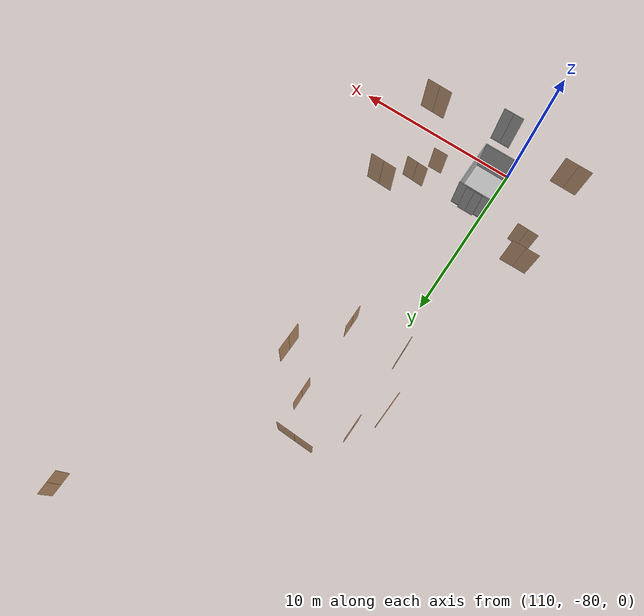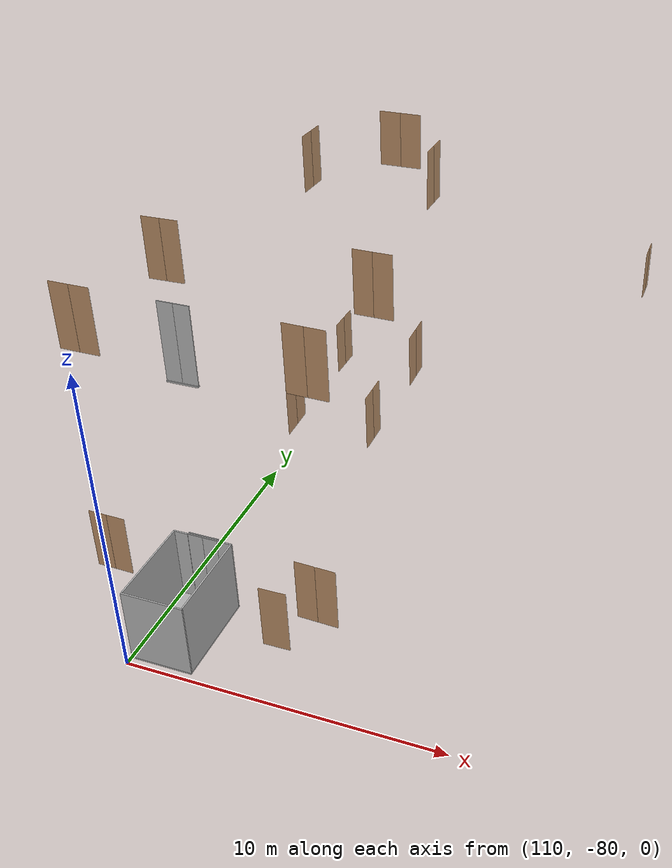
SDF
<sdf version="1.7">
 <world name="sim_world">
  <model name="TD2011CP1">
   <pose>120.17686281691562 -51.225544932021194 0.0 0 0 -1.5641731375628034</pose>
   <link name="right">
    <pose>0.3380386731190806 0 1.11 0 0 0</pose>
    <visual name="right_visual">
     <geometry><box><size>0.6660773462381612 0.03 2.2</size></box></geometry>
     <material>
      <ambient>0.5 0.25 0 0.6</ambient>
      <diffuse>0.5 0.25 0 0.6</diffuse>
      <pbr><metal><metalness>0.0</metalness></metal></pbr>
     </material>
    </visual>
    <collision name="right_collision">
     <geometry><box><size>0.6660773462381612 0.03 2.2</size></box></geometry>
     <surface><contact><collide_bitmask>0x02</collide_bitmask></contact></surface>
    </collision>
    <inertial>
     <mass>50.0</mass>
     <inertia><ixx>20.17041666666667</ixx><iyy>22.0152459632153</iyy><izz>1.8523292965486302</izz></inertia>
    </inertial>
   </link>
   <joint name="right_joint" type="revolute">
    <parent>world</parent>
    <child>right</child>
    <axis><xyz>0 0 -1</xyz><limit><lower>0</lower><upper>1.57</upper></limit></axis>
    <pose>0.3380386731190806 0 0 0 0 0</pose>
   </joint>
   <link name="left">
    <pose>-0.3380386731190806 0 1.11 0 0 0</pose>
    <visual name="left_visual">
     <geometry><box><size>0.6660773462381612 0.03 2.2</size></box></geometry>
     <material>
      <ambient>0.5 0.25 0 0.6</ambient>
      <diffuse>0.5 0.25 0 0.6</diffuse>
      <pbr><metal><metalness>0.0</metalness></metal></pbr>
     </material>
    </visual>
    <collision name="left_collision">
     <geometry><box><size>0.6660773462381612 0.03 2.2</size></box></geometry>
     <surface><contact><collide_bitmask>0x02</collide_bitmask></contact></surface>
    </collision>
    <inertial>
     <mass>50.0</mass>
     <inertia><ixx>20.17041666666667</ixx><iyy>22.0152459632153</iyy><izz>1.8523292965486302</izz></inertia>
    </inertial>
   </link>
   <joint name="left_joint" type="revolute">
    <parent>world</parent>
    <child>left</child>
    <axis><xyz>0 0 -1</xyz><limit><lower>-1.57</lower><upper>0</upper></limit></axis>
    <pose>-0.3380386731190806 0 0 0 0 0</pose>
   </joint>
   <plugin name="register_component" filename="libregister_component.so">
    <component name="Door">
     <v_max_door>0.5</v_max_door>
     <a_max_door>0.3</a_max_door>
     <a_nom_door>0.15</a_nom_door>
     <dx_min_door>0.01</dx_min_door>
     <f_max_door>500.0</f_max_door>
     <ros_interface>true</ros_interface>
     <door name="TD2011CP1" type="DoubleSwingDoor" left_joint_name="left_joint" right_joint_name="right_joint"/>
    </component>
   </plugin>
  </model>
  <model name="TD2003AA">
   <pose>109.39467455781474 -62.08049952299339 0.0 0 0 -1.5804696773764422</pose>
   <link name="right">
    <pose>0.3555885767495707 0 1.11 0 0 0</pose>
    <visual name="right_visual">
     <geometry><box><size>0.7011771534991413 0.03 2.2</size></box></geometry>
     <material>
      <ambient>0.5 0.25 0 0.6</ambient>
      <diffuse>0.5 0.25 0 0.6</diffuse>
      <pbr><metal><metalness>0.0</metalness></metal></pbr>
     </material>
    </visual>
    <collision name="right_collision">
     <geometry><box><size>0.7011771534991413 0.03 2.2</size></box></geometry>
     <surface><contact><collide_bitmask>0x02</collide_bitmask></contact></surface>
    </collision>
    <inertial>
     <mass>50.0</mass>
     <inertia><ixx>20.17041666666667</ixx><iyy>22.215205835788165</iyy><izz>2.0522891691214937</izz></inertia>
    </inertial>
   </link>
   <joint name="right_joint" type="revolute">
    <parent>world</parent>
    <child>right</child>
    <axis><xyz>0 0 -1</xyz><limit><lower>0</lower><upper>1.57</upper></limit></axis>
    <pose>0.3555885767495707 0 0 0 0 0</pose>
   </joint>
   <link name="left">
    <pose>-0.3555885767495707 0 1.11 0 0 0</pose>
    <visual name="left_visual">
     <geometry><box><size>0.7011771534991413 0.03 2.2</size></box></geometry>
     <material>
      <ambient>0.5 0.25 0 0.6</ambient>
      <diffuse>0.5 0.25 0 0.6</diffuse>
      <pbr><metal><metalness>0.0</metalness></metal></pbr>
     </material>
    </visual>
    <collision name="left_collision">
     <geometry><box><size>0.7011771534991413 0.03 2.2</size></box></geometry>
     <surface><contact><collide_bitmask>0x02</collide_bitmask></contact></surface>
    </collision>
    <inertial>
     <mass>50.0</mass>
     <inertia><ixx>20.17041666666667</ixx><iyy>22.215205835788165</iyy><izz>2.0522891691214937</izz></inertia>
    </inertial>
   </link>
   <joint name="left_joint" type="revolute">
    <parent>world</parent>
    <child>left</child>
    <axis><xyz>0 0 -1</xyz><limit><lower>-1.57</lower><upper>0</upper></limit></axis>
    <pose>-0.3555885767495707 0 0 0 0 0</pose>
   </joint>
   <plugin name="register_component" filename="libregister_component.so">
    <component name="Door">
     <v_max_door>0.5</v_max_door>
     <a_max_door>0.3</a_max_door>
     <a_nom_door>0.15</a_nom_door>
     <dx_min_door>0.01</dx_min_door>
     <f_max_door>500.0</f_max_door>
     <ros_interface>true</ros_interface>
     <door name="TD2003AA" type="DoubleSwingDoor" left_joint_name="left_joint" right_joint_name="right_joint"/>
    </component>
   </plugin>
  </model>
  <model name="TD2002AA">
   <pose>112.55227772977256 -62.0532626495431 0.0 0 0 1.5980504964411408</pose>
   <link name="right">
    <pose>0.384640636116833 0 1.11 0 0 0</pose>
    <visual name="right_visual">
     <geometry><box><size>0.759281272233666 0.03 2.2</size></box></geometry>
     <material>
      <ambient>0.5 0.25 0 0.6</ambient>
      <diffuse>0.5 0.25 0 0.6</diffuse>
      <pbr><metal><metalness>0.0</metalness></metal></pbr>
     </material>
    </visual>
    <collision name="right_collision">
     <geometry><box><size>0.759281272233666 0.03 2.2</size></box></geometry>
     <surface><contact><collide_bitmask>0x02</collide_bitmask></contact></surface>
    </collision>
    <inertial>
     <mass>50.0</mass>
     <inertia><ixx>20.17041666666667</ixx><iyy>22.568783543186562</iyy><izz>2.405866876519894</izz></inertia>
    </inertial>
   </link>
   <joint name="right_joint" type="revolute">
    <parent>world</parent>
    <child>right</child>
    <axis><xyz>0 0 -1</xyz><limit><lower>0</lower><upper>1.57</upper></limit></axis>
    <pose>0.384640636116833 0 0 0 0 0</pose>
   </joint>
   <link name="left">
    <pose>-0.384640636116833 0 1.11 0 0 0</pose>
    <visual name="left_visual">
     <geometry><box><size>0.759281272233666 0.03 2.2</size></box></geometry>
     <material>
      <ambient>0.5 0.25 0 0.6</ambient>
      <diffuse>0.5 0.25 0 0.6</diffuse>
      <pbr><metal><metalness>0.0</metalness></metal></pbr>
     </material>
    </visual>
    <collision name="left_collision">
     <geometry><box><size>0.759281272233666 0.03 2.2</size></box></geometry>
     <surface><contact><collide_bitmask>0x02</collide_bitmask></contact></surface>
    </collision>
    <inertial>
     <mass>50.0</mass>
     <inertia><ixx>20.17041666666667</ixx><iyy>22.568783543186562</iyy><izz>2.405866876519894</izz></inertia>
    </inertial>
   </link>
   <joint name="left_joint" type="revolute">
    <parent>world</parent>
    <child>left</child>
    <axis><xyz>0 0 -1</xyz><limit><lower>-1.57</lower><upper>0</upper></limit></axis>
    <pose>-0.384640636116833 0 0 0 0 0</pose>
   </joint>
   <plugin name="register_component" filename="libregister_component.so">
    <component name="Door">
     <v_max_door>0.5</v_max_door>
     <a_max_door>0.3</a_max_door>
     <a_nom_door>0.15</a_nom_door>
     <dx_min_door>0.01</dx_min_door>
     <f_max_door>500.0</f_max_door>
     <ros_interface>true</ros_interface>
     <door name="TD2002AA" type="DoubleSwingDoor" left_joint_name="left_joint" right_joint_name="right_joint"/>
    </component>
   </plugin>
  </model>
  <model name="TD2048AA">
   <pose>109.40632345548323 -66.90460207556437 0.0 0 0 -1.5465537573246375</pose>
   <link name="right">
    <pose>0.3821804307386069 0 1.11 0 0 0</pose>
    <visual name="right_visual">
     <geometry><box><size>0.7543608614772138 0.03 2.2</size></box></geometry>
     <material>
      <ambient>0.5 0.25 0 0.6</ambient>
      <diffuse>0.5 0.25 0 0.6</diffuse>
      <pbr><metal><metalness>0.0</metalness></metal></pbr>
     </material>
    </visual>
    <collision name="right_collision">
     <geometry><box><size>0.7543608614772138 0.03 2.2</size></box></geometry>
     <surface><contact><collide_bitmask>0x02</collide_bitmask></contact></surface>
    </collision>
    <inertial>
     <mass>50.0</mass>
     <inertia><ixx>20.17041666666667</ixx><iyy>22.537751288869355</iyy><izz>2.3748346222026844</izz></inertia>
    </inertial>
   </link>
   <joint name="right_joint" type="revolute">
    <parent>world</parent>
    <child>right</child>
    <axis><xyz>0 0 -1</xyz><limit><lower>0</lower><upper>1.57</upper></limit></axis>
    <pose>0.3821804307386069 0 0 0 0 0</pose>
   </joint>
   <link name="left">
    <pose>-0.3821804307386069 0 1.11 0 0 0</pose>
    <visual name="left_visual">
     <geometry><box><size>0.7543608614772138 0.03 2.2</size></box></geometry>
     <material>
      <ambient>0.5 0.25 0 0.6</ambient>
      <diffuse>0.5 0.25 0 0.6</diffuse>
      <pbr><metal><metalness>0.0</metalness></metal></pbr>
     </material>
    </visual>
    <collision name="left_collision">
     <geometry><box><size>0.7543608614772138 0.03 2.2</size></box></geometry>
     <surface><contact><collide_bitmask>0x02</collide_bitmask></contact></surface>
    </collision>
    <inertial>
     <mass>50.0</mass>
     <inertia><ixx>20.17041666666667</ixx><iyy>22.537751288869355</iyy><izz>2.3748346222026844</izz></inertia>
    </inertial>
   </link>
   <joint name="left_joint" type="revolute">
    <parent>world</parent>
    <child>left</child>
    <axis><xyz>0 0 -1</xyz><limit><lower>-1.57</lower><upper>0</upper></limit></axis>
    <pose>-0.3821804307386069 0 0 0 0 0</pose>
   </joint>
   <plugin name="register_component" filename="libregister_component.so">
    <component name="Door">
     <v_max_door>0.5</v_max_door>
     <a_max_door>0.3</a_max_door>
     <a_nom_door>0.15</a_nom_door>
     <dx_min_door>0.01</dx_min_door>
     <f_max_door>500.0</f_max_door>
     <ros_interface>true</ros_interface>
     <door name="TD2048AA" type="DoubleSwingDoor" left_joint_name="left_joint" right_joint_name="right_joint"/>
    </component>
   </plugin>
  </model>
  <model name="TD2047AA">
   <pose>112.57834746896705 -66.83982612436739 0.0 0 0 1.5783168461663433</pose>
   <link name="right">
    <pose>0.33948855459902605 0 1.11 0 0 0</pose>
    <visual name="right_visual">
     <geometry><box><size>0.6689771091980521 0.03 2.2</size></box></geometry>
     <material>
      <ambient>0.5 0.25 0 0.6</ambient>
      <diffuse>0.5 0.25 0 0.6</diffuse>
      <pbr><metal><metalness>0.0</metalness></metal></pbr>
     </material>
    </visual>
    <collision name="right_collision">
     <geometry><box><size>0.6689771091980521 0.03 2.2</size></box></geometry>
     <surface><contact><collide_bitmask>0x02</collide_bitmask></contact></surface>
    </collision>
    <inertial>
     <mass>50.0</mass>
     <inertia><ixx>20.17041666666667</ixx><iyy>22.031376552629098</iyy><izz>1.8684598859624273</izz></inertia>
    </inertial>
   </link>
   <joint name="right_joint" type="revolute">
    <parent>world</parent>
    <child>right</child>
    <axis><xyz>0 0 -1</xyz><limit><lower>0</lower><upper>1.57</upper></limit></axis>
    <pose>0.33948855459902605 0 0 0 0 0</pose>
   </joint>
   <link name="left">
    <pose>-0.33948855459902605 0 1.11 0 0 0</pose>
    <visual name="left_visual">
     <geometry><box><size>0.6689771091980521 0.03 2.2</size></box></geometry>
     <material>
      <ambient>0.5 0.25 0 0.6</ambient>
      <diffuse>0.5 0.25 0 0.6</diffuse>
      <pbr><metal><metalness>0.0</metalness></metal></pbr>
     </material>
    </visual>
    <collision name="left_collision">
     <geometry><box><size>0.6689771091980521 0.03 2.2</size></box></geometry>
     <surface><contact><collide_bitmask>0x02</collide_bitmask></contact></surface>
    </collision>
    <inertial>
     <mass>50.0</mass>
     <inertia><ixx>20.17041666666667</ixx><iyy>22.031376552629098</iyy><izz>1.8684598859624273</izz></inertia>
    </inertial>
   </link>
   <joint name="left_joint" type="revolute">
    <parent>world</parent>
    <child>left</child>
    <axis><xyz>0 0 -1</xyz><limit><lower>-1.57</lower><upper>0</upper></limit></axis>
    <pose>-0.33948855459902605 0 0 0 0 0</pose>
   </joint>
   <plugin name="register_component" filename="libregister_component.so">
    <component name="Door">
     <v_max_door>0.5</v_max_door>
     <a_max_door>0.3</a_max_door>
     <a_nom_door>0.15</a_nom_door>
     <dx_min_door>0.01</dx_min_door>
     <f_max_door>500.0</f_max_door>
     <ros_interface>true</ros_interface>
     <door name="TD2047AA" type="DoubleSwingDoor" left_joint_name="left_joint" right_joint_name="right_joint"/>
    </component>
   </plugin>
  </model>
  <model name="TD2006CI">
   <pose>107.39730383812659 -76.51110457595095 0.0 0 0 -0.01999491726999864</pose>
   <link name="right">
    <pose>0.32499401817698503 0 1.11 0 0 0</pose>
    <visual name="right_visual">
     <geometry><box><size>0.6399880363539701 0.03 2.2</size></box></geometry>
     <material>
      <ambient>0.5 0.25 0 0.6</ambient>
      <diffuse>0.5 0.25 0 0.6</diffuse>
      <pbr><metal><metalness>0.0</metalness></metal></pbr>
     </material>
    </visual>
    <collision name="right_collision">
     <geometry><box><size>0.6399880363539701 0.03 2.2</size></box></geometry>
     <surface><contact><collide_bitmask>0x02</collide_bitmask></contact></surface>
    </collision>
    <inertial>
     <mass>50.0</mass>
     <inertia><ixx>20.17041666666667</ixx><iyy>21.87326952781755</iyy><izz>1.7103528611508774</izz></inertia>
    </inertial>
   </link>
   <joint name="right_joint" type="revolute">
    <parent>world</parent>
    <child>right</child>
    <axis><xyz>0 0 -1</xyz><limit><lower>0</lower><upper>1.57</upper></limit></axis>
    <pose>0.32499401817698503 0 0 0 0 0</pose>
   </joint>
   <link name="left">
    <pose>-0.32499401817698503 0 1.11 0 0 0</pose>
    <visual name="left_visual">
     <geometry><box><size>0.6399880363539701 0.03 2.2</size></box></geometry>
     <material>
      <ambient>0.5 0.25 0 0.6</ambient>
      <diffuse>0.5 0.25 0 0.6</diffuse>
      <pbr><metal><metalness>0.0</metalness></metal></pbr>
     </material>
    </visual>
    <collision name="left_collision">
     <geometry><box><size>0.6399880363539701 0.03 2.2</size></box></geometry>
     <surface><contact><collide_bitmask>0x02</collide_bitmask></contact></surface>
    </collision>
    <inertial>
     <mass>50.0</mass>
     <inertia><ixx>20.17041666666667</ixx><iyy>21.87326952781755</iyy><izz>1.7103528611508774</izz></inertia>
    </inertial>
   </link>
   <joint name="left_joint" type="revolute">
    <parent>world</parent>
    <child>left</child>
    <axis><xyz>0 0 -1</xyz><limit><lower>-1.57</lower><upper>0</upper></limit></axis>
    <pose>-0.32499401817698503 0 0 0 0 0</pose>
   </joint>
   <plugin name="register_component" filename="libregister_component.so">
    <component name="Door">
     <v_max_door>0.5</v_max_door>
     <a_max_door>0.3</a_max_door>
     <a_nom_door>0.15</a_nom_door>
     <dx_min_door>0.01</dx_min_door>
     <f_max_door>500.0</f_max_door>
     <ros_interface>true</ros_interface>
     <door name="TD2006CI" type="DoubleSwingDoor" left_joint_name="left_joint" right_joint_name="right_joint"/>
    </component>
   </plugin>
  </model>
  <model name="TD2007CI">
   <pose>113.87501118227308 -77.92768011159583 0.0 0 0 -3.130096002835818</pose>
   <link name="right">
    <pose>0 0 1.11 0 0 0</pose>
    <visual name="right_visual">
     <geometry><box><size>0.8783152083204939 0.03 2.2</size></box></geometry>
     <material>
      <ambient>0.5 0.25 0 0.6</ambient>
      <diffuse>0.5 0.25 0 0.6</diffuse>
      <pbr><metal><metalness>0.0</metalness></metal></pbr>
     </material>
    </visual>
    <collision name="right_collision">
     <geometry><box><size>0.8783152083204939 0.03 2.2</size></box></geometry>
     <surface><contact><collide_bitmask>0x02</collide_bitmask></contact></surface>
    </collision>
    <inertial>
     <mass>50.0</mass>
     <inertia><ixx>20.17041666666667</ixx><iyy>23.380990021529474</iyy><izz>3.2180733548628027</izz></inertia>
    </inertial>
   </link>
   <joint name="right_joint" type="revolute">
    <parent>world</parent>
    <child>right</child>
    <axis><xyz>0 0 1</xyz><limit><lower>0</lower><upper>1.57</upper></limit></axis>
    <pose>0.44415760416024697 0 0 0 0 0</pose>
   </joint>
   <plugin name="register_component" filename="libregister_component.so">
    <component name="Door">
     <v_max_door>0.5</v_max_door>
     <a_max_door>0.3</a_max_door>
     <a_nom_door>0.15</a_nom_door>
     <dx_min_door>0.01</dx_min_door>
     <f_max_door>500.0</f_max_door>
     <ros_interface>true</ros_interface>
     <door name="TD2007CI" type="SwingDoor" left_joint_name="empty_joint" right_joint_name="right_joint"/>
    </component>
   </plugin>
  </model>
  <model name="TD2010CP">
   <pose>114.61010375942227 -76.55956309245626 0.0 0 0 -0.03701349063309876</pose>
   <link name="right">
    <pose>0.3448157269059257 0 1.11 0 0 0</pose>
    <visual name="right_visual">
     <geometry><box><size>0.6796314538118514 0.03 2.2</size></box></geometry>
     <material>
      <ambient>0.5 0.25 0 0.6</ambient>
      <diffuse>0.5 0.25 0 0.6</diffuse>
      <pbr><metal><metalness>0.0</metalness></metal></pbr>
     </material>
    </visual>
    <collision name="right_collision">
     <geometry><box><size>0.6796314538118514 0.03 2.2</size></box></geometry>
     <surface><contact><collide_bitmask>0x02</collide_bitmask></contact></surface>
    </collision>
    <inertial>
     <mass>50.0</mass>
     <inertia><ixx>20.17041666666667</ixx><iyy>22.091245470876718</iyy><izz>1.928328804210045</izz></inertia>
    </inertial>
   </link>
   <joint name="right_joint" type="revolute">
    <parent>world</parent>
    <child>right</child>
    <axis><xyz>0 0 -1</xyz><limit><lower>0</lower><upper>1.57</upper></limit></axis>
    <pose>0.3448157269059257 0 0 0 0 0</pose>
   </joint>
   <link name="left">
    <pose>-0.3448157269059257 0 1.11 0 0 0</pose>
    <visual name="left_visual">
     <geometry><box><size>0.6796314538118514 0.03 2.2</size></box></geometry>
     <material>
      <ambient>0.5 0.25 0 0.6</ambient>
      <diffuse>0.5 0.25 0 0.6</diffuse>
      <pbr><metal><metalness>0.0</metalness></metal></pbr>
     </material>
    </visual>
    <collision name="left_collision">
     <geometry><box><size>0.6796314538118514 0.03 2.2</size></box></geometry>
     <surface><contact><collide_bitmask>0x02</collide_bitmask></contact></surface>
    </collision>
    <inertial>
     <mass>50.0</mass>
     <inertia><ixx>20.17041666666667</ixx><iyy>22.091245470876718</iyy><izz>1.928328804210045</izz></inertia>
    </inertial>
   </link>
   <joint name="left_joint" type="revolute">
    <parent>world</parent>
    <child>left</child>
    <axis><xyz>0 0 -1</xyz><limit><lower>-1.57</lower><upper>0</upper></limit></axis>
    <pose>-0.3448157269059257 0 0 0 0 0</pose>
   </joint>
   <plugin name="register_component" filename="libregister_component.so">
    <component name="Door">
     <v_max_door>0.5</v_max_door>
     <a_max_door>0.3</a_max_door>
     <a_nom_door>0.15</a_nom_door>
     <dx_min_door>0.01</dx_min_door>
     <f_max_door>500.0</f_max_door>
     <ros_interface>true</ros_interface>
     <door name="TD2010CP" type="DoubleSwingDoor" left_joint_name="left_joint" right_joint_name="right_joint"/>
    </component>
   </plugin>
  </model>
  <model name="TD2107AL1">
   <pose>113.41431357541177 -62.38264448825677 8.0 0 0 1.5657095291341885</pose>
   <link name="right">
    <pose>0.33248173329182623 0 1.11 0 0 0</pose>
    <visual name="right_visual">
     <geometry><box><size>0.6549634665836525 0.03 2.2</size></box></geometry>
     <material>
      <ambient>0.5 0.25 0 0.6</ambient>
      <diffuse>0.5 0.25 0 0.6</diffuse>
      <pbr><metal><metalness>0.0</metalness></metal></pbr>
     </material>
    </visual>
    <collision name="right_collision">
     <geometry><box><size>0.6549634665836525 0.03 2.2</size></box></geometry>
     <surface><contact><collide_bitmask>0x02</collide_bitmask></contact></surface>
    </collision>
    <inertial>
     <mass>50.0</mass>
     <inertia><ixx>20.17041666666667</ixx><iyy>21.95407142733032</iyy><izz>1.7911547606636469</izz></inertia>
    </inertial>
   </link>
   <joint name="right_joint" type="revolute">
    <parent>world</parent>
    <child>right</child>
    <axis><xyz>0 0 -1</xyz><limit><lower>0</lower><upper>1.57</upper></limit></axis>
    <pose>0.33248173329182623 0 0 0 0 0</pose>
   </joint>
   <link name="left">
    <pose>-0.33248173329182623 0 1.11 0 0 0</pose>
    <visual name="left_visual">
     <geometry><box><size>0.6549634665836525 0.03 2.2</size></box></geometry>
     <material>
      <ambient>0.5 0.25 0 0.6</ambient>
      <diffuse>0.5 0.25 0 0.6</diffuse>
      <pbr><metal><metalness>0.0</metalness></metal></pbr>
     </material>
    </visual>
    <collision name="left_collision">
     <geometry><box><size>0.6549634665836525 0.03 2.2</size></box></geometry>
     <surface><contact><collide_bitmask>0x02</collide_bitmask></contact></surface>
    </collision>
    <inertial>
     <mass>50.0</mass>
     <inertia><ixx>20.17041666666667</ixx><iyy>21.95407142733032</iyy><izz>1.7911547606636469</izz></inertia>
    </inertial>
   </link>
   <joint name="left_joint" type="revolute">
    <parent>world</parent>
    <child>left</child>
    <axis><xyz>0 0 -1</xyz><limit><lower>-1.57</lower><upper>0</upper></limit></axis>
    <pose>-0.33248173329182623 0 0 0 0 0</pose>
   </joint>
   <plugin name="register_component" filename="libregister_component.so">
    <component name="Door">
     <v_max_door>0.5</v_max_door>
     <a_max_door>0.3</a_max_door>
     <a_nom_door>0.15</a_nom_door>
     <dx_min_door>0.01</dx_min_door>
     <f_max_door>500.0</f_max_door>
     <ros_interface>true</ros_interface>
     <door name="TD2107AL1" type="DoubleSwingDoor" left_joint_name="left_joint" right_joint_name="right_joint"/>
    </component>
   </plugin>
  </model>
  <model name="TD2107AL2">
   <pose>114.6058632095701 -71.40141686040613 8.0 0 0 3.125722063086298</pose>
   <link name="right">
    <pose>0.3272724999890475 0 1.11 0 0 0</pose>
    <visual name="right_visual">
     <geometry><box><size>0.644544999978095 0.03 2.2</size></box></geometry>
     <material>
      <ambient>0.5 0.25 0 0.6</ambient>
      <diffuse>0.5 0.25 0 0.6</diffuse>
      <pbr><metal><metalness>0.0</metalness></metal></pbr>
     </material>
    </visual>
    <collision name="right_collision">
     <geometry><box><size>0.644544999978095 0.03 2.2</size></box></geometry>
     <surface><contact><collide_bitmask>0x02</collide_bitmask></contact></surface>
    </collision>
    <inertial>
     <mass>50.0</mass>
     <inertia><ixx>20.17041666666667</ixx><iyy>21.89765940415318</iyy><izz>1.7347427374865105</izz></inertia>
    </inertial>
   </link>
   <joint name="right_joint" type="revolute">
    <parent>world</parent>
    <child>right</child>
    <axis><xyz>0 0 -1</xyz><limit><lower>0</lower><upper>1.57</upper></limit></axis>
    <pose>0.3272724999890475 0 0 0 0 0</pose>
   </joint>
   <link name="left">
    <pose>-0.3272724999890475 0 1.11 0 0 0</pose>
    <visual name="left_visual">
     <geometry><box><size>0.644544999978095 0.03 2.2</size></box></geometry>
     <material>
      <ambient>0.5 0.25 0 0.6</ambient>
      <diffuse>0.5 0.25 0 0.6</diffuse>
      <pbr><metal><metalness>0.0</metalness></metal></pbr>
     </material>
    </visual>
    <collision name="left_collision">
     <geometry><box><size>0.644544999978095 0.03 2.2</size></box></geometry>
     <surface><contact><collide_bitmask>0x02</collide_bitmask></contact></surface>
    </collision>
    <inertial>
     <mass>50.0</mass>
     <inertia><ixx>20.17041666666667</ixx><iyy>21.89765940415318</iyy><izz>1.7347427374865105</izz></inertia>
    </inertial>
   </link>
   <joint name="left_joint" type="revolute">
    <parent>world</parent>
    <child>left</child>
    <axis><xyz>0 0 -1</xyz><limit><lower>-1.57</lower><upper>0</upper></limit></axis>
    <pose>-0.3272724999890475 0 0 0 0 0</pose>
   </joint>
   <plugin name="register_component" filename="libregister_component.so">
    <component name="Door">
     <v_max_door>0.5</v_max_door>
     <a_max_door>0.3</a_max_door>
     <a_nom_door>0.15</a_nom_door>
     <dx_min_door>0.01</dx_min_door>
     <f_max_door>500.0</f_max_door>
     <ros_interface>true</ros_interface>
     <door name="TD2107AL2" type="DoubleSwingDoor" left_joint_name="left_joint" right_joint_name="right_joint"/>
    </component>
   </plugin>
  </model>
  <model name="TD2110AL2">
   <pose>107.34913462446937 -71.35679158429605 8.0 0 0 -3.1162915986819084</pose>
   <link name="right">
    <pose>0.3252623310902839 0 1.11 0 0 0</pose>
    <visual name="right_visual">
     <geometry><box><size>0.6405246621805678 0.03 2.2</size></box></geometry>
     <material>
      <ambient>0.5 0.25 0 0.6</ambient>
      <diffuse>0.5 0.25 0 0.6</diffuse>
      <pbr><metal><metalness>0.0</metalness></metal></pbr>
     </material>
    </visual>
    <collision name="right_collision">
     <geometry><box><size>0.6405246621805678 0.03 2.2</size></box></geometry>
     <surface><contact><collide_bitmask>0x02</collide_bitmask></contact></surface>
    </collision>
    <inertial>
     <mass>50.0</mass>
     <inertia><ixx>20.17041666666667</ixx><iyy>21.876132678589716</iyy><izz>1.713216011923044</izz></inertia>
    </inertial>
   </link>
   <joint name="right_joint" type="revolute">
    <parent>world</parent>
    <child>right</child>
    <axis><xyz>0 0 -1</xyz><limit><lower>0</lower><upper>1.57</upper></limit></axis>
    <pose>0.3252623310902839 0 0 0 0 0</pose>
   </joint>
   <link name="left">
    <pose>-0.3252623310902839 0 1.11 0 0 0</pose>
    <visual name="left_visual">
     <geometry><box><size>0.6405246621805678 0.03 2.2</size></box></geometry>
     <material>
      <ambient>0.5 0.25 0 0.6</ambient>
      <diffuse>0.5 0.25 0 0.6</diffuse>
      <pbr><metal><metalness>0.0</metalness></metal></pbr>
     </material>
    </visual>
    <collision name="left_collision">
     <geometry><box><size>0.6405246621805678 0.03 2.2</size></box></geometry>
     <surface><contact><collide_bitmask>0x02</collide_bitmask></contact></surface>
    </collision>
    <inertial>
     <mass>50.0</mass>
     <inertia><ixx>20.17041666666667</ixx><iyy>21.876132678589716</iyy><izz>1.713216011923044</izz></inertia>
    </inertial>
   </link>
   <joint name="left_joint" type="revolute">
    <parent>world</parent>
    <child>left</child>
    <axis><xyz>0 0 -1</xyz><limit><lower>-1.57</lower><upper>0</upper></limit></axis>
    <pose>-0.3252623310902839 0 0 0 0 0</pose>
   </joint>
   <plugin name="register_component" filename="libregister_component.so">
    <component name="Door">
     <v_max_door>0.5</v_max_door>
     <a_max_door>0.3</a_max_door>
     <a_nom_door>0.15</a_nom_door>
     <dx_min_door>0.01</dx_min_door>
     <f_max_door>500.0</f_max_door>
     <ros_interface>true</ros_interface>
     <door name="TD2110AL2" type="DoubleSwingDoor" left_joint_name="left_joint" right_joint_name="right_joint"/>
    </component>
   </plugin>
  </model>
  <model name="TD2109AL">
   <pose>107.33063044133087 -76.1974517989371 8.0 0 0 -0.005031917519287677</pose>
   <link name="right">
    <pose>0.3359832755734411 0 1.11 0 0 0</pose>
    <visual name="right_visual">
     <geometry><box><size>0.6619665511468822 0.03 2.2</size></box></geometry>
     <material>
      <ambient>0.5 0.25 0 0.6</ambient>
      <diffuse>0.5 0.25 0 0.6</diffuse>
      <pbr><metal><metalness>0.0</metalness></metal></pbr>
     </material>
    </visual>
    <collision name="right_collision">
     <geometry><box><size>0.6619665511468822 0.03 2.2</size></box></geometry>
     <surface><contact><collide_bitmask>0x02</collide_bitmask></contact></surface>
    </collision>
    <inertial>
     <mass>50.0</mass>
     <inertia><ixx>20.17041666666667</ixx><iyy>21.992498811822077</iyy><izz>1.8295821451554077</izz></inertia>
    </inertial>
   </link>
   <joint name="right_joint" type="revolute">
    <parent>world</parent>
    <child>right</child>
    <axis><xyz>0 0 -1</xyz><limit><lower>0</lower><upper>1.57</upper></limit></axis>
    <pose>0.3359832755734411 0 0 0 0 0</pose>
   </joint>
   <link name="left">
    <pose>-0.3359832755734411 0 1.11 0 0 0</pose>
    <visual name="left_visual">
     <geometry><box><size>0.6619665511468822 0.03 2.2</size></box></geometry>
     <material>
      <ambient>0.5 0.25 0 0.6</ambient>
      <diffuse>0.5 0.25 0 0.6</diffuse>
      <pbr><metal><metalness>0.0</metalness></metal></pbr>
     </material>
    </visual>
    <collision name="left_collision">
     <geometry><box><size>0.6619665511468822 0.03 2.2</size></box></geometry>
     <surface><contact><collide_bitmask>0x02</collide_bitmask></contact></surface>
    </collision>
    <inertial>
     <mass>50.0</mass>
     <inertia><ixx>20.17041666666667</ixx><iyy>21.992498811822077</iyy><izz>1.8295821451554077</izz></inertia>
    </inertial>
   </link>
   <joint name="left_joint" type="revolute">
    <parent>world</parent>
    <child>left</child>
    <axis><xyz>0 0 -1</xyz><limit><lower>-1.57</lower><upper>0</upper></limit></axis>
    <pose>-0.3359832755734411 0 0 0 0 0</pose>
   </joint>
   <plugin name="register_component" filename="libregister_component.so">
    <component name="Door">
     <v_max_door>0.5</v_max_door>
     <a_max_door>0.3</a_max_door>
     <a_nom_door>0.15</a_nom_door>
     <dx_min_door>0.01</dx_min_door>
     <f_max_door>500.0</f_max_door>
     <ros_interface>true</ros_interface>
     <door name="TD2109AL" type="DoubleSwingDoor" left_joint_name="left_joint" right_joint_name="right_joint"/>
    </component>
   </plugin>
  </model>
  <model name="TD2108AL">
   <pose>114.58571537129035 -76.21364939362331 8.0 0 0 -0.021201906204535447</pose>
   <link name="right">
    <pose>0.32730515985765785 0 1.11 0 0 0</pose>
    <visual name="right_visual">
     <geometry><box><size>0.6446103197153157 0.03 2.2</size></box></geometry>
     <material>
      <ambient>0.5 0.25 0 0.6</ambient>
      <diffuse>0.5 0.25 0 0.6</diffuse>
      <pbr><metal><metalness>0.0</metalness></metal></pbr>
     </material>
    </visual>
    <collision name="right_collision">
     <geometry><box><size>0.6446103197153157 0.03 2.2</size></box></geometry>
     <surface><contact><collide_bitmask>0x02</collide_bitmask></contact></surface>
    </collision>
    <inertial>
     <mass>50.0</mass>
     <inertia><ixx>20.17041666666667</ixx><iyy>21.898010267847845</iyy><izz>1.735093601181173</izz></inertia>
    </inertial>
   </link>
   <joint name="right_joint" type="revolute">
    <parent>world</parent>
    <child>right</child>
    <axis><xyz>0 0 -1</xyz><limit><lower>0</lower><upper>1.57</upper></limit></axis>
    <pose>0.32730515985765785 0 0 0 0 0</pose>
   </joint>
   <link name="left">
    <pose>-0.32730515985765785 0 1.11 0 0 0</pose>
    <visual name="left_visual">
     <geometry><box><size>0.6446103197153157 0.03 2.2</size></box></geometry>
     <material>
      <ambient>0.5 0.25 0 0.6</ambient>
      <diffuse>0.5 0.25 0 0.6</diffuse>
      <pbr><metal><metalness>0.0</metalness></metal></pbr>
     </material>
    </visual>
    <collision name="left_collision">
     <geometry><box><size>0.6446103197153157 0.03 2.2</size></box></geometry>
     <surface><contact><collide_bitmask>0x02</collide_bitmask></contact></surface>
    </collision>
    <inertial>
     <mass>50.0</mass>
     <inertia><ixx>20.17041666666667</ixx><iyy>21.898010267847845</iyy><izz>1.735093601181173</izz></inertia>
    </inertial>
   </link>
   <joint name="left_joint" type="revolute">
    <parent>world</parent>
    <child>left</child>
    <axis><xyz>0 0 -1</xyz><limit><lower>-1.57</lower><upper>0</upper></limit></axis>
    <pose>-0.32730515985765785 0 0 0 0 0</pose>
   </joint>
   <plugin name="register_component" filename="libregister_component.so">
    <component name="Door">
     <v_max_door>0.5</v_max_door>
     <a_max_door>0.3</a_max_door>
     <a_nom_door>0.15</a_nom_door>
     <dx_min_door>0.01</dx_min_door>
     <f_max_door>500.0</f_max_door>
     <ros_interface>true</ros_interface>
     <door name="TD2108AL" type="DoubleSwingDoor" left_joint_name="left_joint" right_joint_name="right_joint"/>
    </component>
   </plugin>
  </model>
  <model name="TD2110AL1">
   <pose>108.49858527767519 -62.38018025702548 8.0 0 0 -1.6041617210297752</pose>
   <link name="right">
    <pose>0.3421643092507912 0 1.11 0 0 0</pose>
    <visual name="right_visual">
     <geometry><box><size>0.6743286185015824 0.03 2.2</size></box></geometry>
     <material>
      <ambient>0.5 0.25 0 0.6</ambient>
      <diffuse>0.5 0.25 0 0.6</diffuse>
      <pbr><metal><metalness>0.0</metalness></metal></pbr>
     </material>
    </visual>
    <collision name="right_collision">
     <geometry><box><size>0.6743286185015824 0.03 2.2</size></box></geometry>
     <surface><contact><collide_bitmask>0x02</collide_bitmask></contact></surface>
    </collision>
    <inertial>
     <mass>50.0</mass>
     <inertia><ixx>20.17041666666667</ixx><iyy>22.061329523876058</iyy><izz>1.8984128572093866</izz></inertia>
    </inertial>
   </link>
   <joint name="right_joint" type="revolute">
    <parent>world</parent>
    <child>right</child>
    <axis><xyz>0 0 -1</xyz><limit><lower>0</lower><upper>1.57</upper></limit></axis>
    <pose>0.3421643092507912 0 0 0 0 0</pose>
   </joint>
   <link name="left">
    <pose>-0.3421643092507912 0 1.11 0 0 0</pose>
    <visual name="left_visual">
     <geometry><box><size>0.6743286185015824 0.03 2.2</size></box></geometry>
     <material>
      <ambient>0.5 0.25 0 0.6</ambient>
      <diffuse>0.5 0.25 0 0.6</diffuse>
      <pbr><metal><metalness>0.0</metalness></metal></pbr>
     </material>
    </visual>
    <collision name="left_collision">
     <geometry><box><size>0.6743286185015824 0.03 2.2</size></box></geometry>
     <surface><contact><collide_bitmask>0x02</collide_bitmask></contact></surface>
    </collision>
    <inertial>
     <mass>50.0</mass>
     <inertia><ixx>20.17041666666667</ixx><iyy>22.061329523876058</iyy><izz>1.8984128572093866</izz></inertia>
    </inertial>
   </link>
   <joint name="left_joint" type="revolute">
    <parent>world</parent>
    <child>left</child>
    <axis><xyz>0 0 -1</xyz><limit><lower>-1.57</lower><upper>0</upper></limit></axis>
    <pose>-0.3421643092507912 0 0 0 0 0</pose>
   </joint>
   <plugin name="register_component" filename="libregister_component.so">
    <component name="Door">
     <v_max_door>0.5</v_max_door>
     <a_max_door>0.3</a_max_door>
     <a_nom_door>0.15</a_nom_door>
     <dx_min_door>0.01</dx_min_door>
     <f_max_door>500.0</f_max_door>
     <ros_interface>true</ros_interface>
     <door name="TD2110AL1" type="DoubleSwingDoor" left_joint_name="left_joint" right_joint_name="right_joint"/>
    </component>
   </plugin>
  </model>
  <model name="TD2113CP">
   <pose>110.9603961984042 -59.3207523206649 8.0 0 0 0.004279503647504382</pose>
   <link name="right">
    <pose>0.4269787596375231 0 1.11 0 0 0</pose>
    <visual name="right_visual">
     <geometry><box><size>0.8439575192750461 0.03 2.2</size></box></geometry>
     <material>
      <ambient>0.5 0.25 0 0.6</ambient>
      <diffuse>0.5 0.25 0 0.6</diffuse>
      <pbr><metal><metalness>0.0</metalness></metal></pbr>
     </material>
    </visual>
    <collision name="right_collision">
     <geometry><box><size>0.8439575192750461 0.03 2.2</size></box></geometry>
     <surface><contact><collide_bitmask>0x02</collide_bitmask></contact></surface>
    </collision>
    <inertial>
     <mass>50.0</mass>
     <inertia><ixx>20.17041666666667</ixx><iyy>23.13443455975371</iyy><izz>2.9715178930870416</izz></inertia>
    </inertial>
   </link>
   <joint name="right_joint" type="revolute">
    <parent>world</parent>
    <child>right</child>
    <axis><xyz>0 0 -1</xyz><limit><lower>0</lower><upper>1.57</upper></limit></axis>
    <pose>0.4269787596375231 0 0 0 0 0</pose>
   </joint>
   <link name="left">
    <pose>-0.4269787596375231 0 1.11 0 0 0</pose>
    <visual name="left_visual">
     <geometry><box><size>0.8439575192750461 0.03 2.2</size></box></geometry>
     <material>
      <ambient>0.5 0.25 0 0.6</ambient>
      <diffuse>0.5 0.25 0 0.6</diffuse>
      <pbr><metal><metalness>0.0</metalness></metal></pbr>
     </material>
    </visual>
    <collision name="left_collision">
     <geometry><box><size>0.8439575192750461 0.03 2.2</size></box></geometry>
     <surface><contact><collide_bitmask>0x02</collide_bitmask></contact></surface>
    </collision>
    <inertial>
     <mass>50.0</mass>
     <inertia><ixx>20.17041666666667</ixx><iyy>23.13443455975371</iyy><izz>2.9715178930870416</izz></inertia>
    </inertial>
   </link>
   <joint name="left_joint" type="revolute">
    <parent>world</parent>
    <child>left</child>
    <axis><xyz>0 0 -1</xyz><limit><lower>-1.57</lower><upper>0</upper></limit></axis>
    <pose>-0.4269787596375231 0 0 0 0 0</pose>
   </joint>
   <plugin name="register_component" filename="libregister_component.so">
    <component name="Door">
     <v_max_door>0.5</v_max_door>
     <a_max_door>0.3</a_max_door>
     <a_nom_door>0.15</a_nom_door>
     <dx_min_door>0.01</dx_min_door>
     <f_max_door>500.0</f_max_door>
     <ros_interface>true</ros_interface>
     <door name="TD2113CP" type="DoubleSwingDoor" left_joint_name="left_joint" right_joint_name="right_joint"/>
    </component>
   </plugin>
  </model>
  <model name="ShaftDoor_lift4_west_L1_lift4_door">
   <pose>110.989978748824 -76.67044002824099 0.0 0 0 0.0</pose>
   <link name="right_door">
    <pose>0.25 0 1.25 0 0 0</pose>
    <visual name="right_door_visual">
     <geometry><box><size>0.5 0.03 2.5</size></box></geometry>
     <material>
      <ambient>0.5 0.5 0.5 1</ambient>
      <diffuse>0.7 0.7 0.7 1</diffuse>
      <specular>0.6 0.6 0.6 1</specular>
      <emissive>0.1 0.1 0.1 1</emissive>
     </material>
    </visual>
    <collision name="right_door_collision">
     <geometry><box><size>0.5 0.03 2.5</size></box></geometry>
     <surface><contact><collide_bitmask>0x02</collide_bitmask></contact></surface>
    </collision>
   </link>
   <link name="left_door">
    <pose>-0.25 0 1.25 0 0 0</pose>
    <visual name="left_door_visual">
     <geometry><box><size>0.5 0.03 2.5</size></box></geometry>
     <material>
      <ambient>0.5 0.5 0.5 1</ambient>
      <diffuse>0.7 0.7 0.7 1</diffuse>
      <specular>0.6 0.6 0.6 1</specular>
      <emissive>0.1 0.1 0.1 1</emissive>
     </material>
    </visual>
    <collision name="left_door_collision">
     <geometry><box><size>0.5 0.03 2.5</size></box></geometry>
     <surface><contact><collide_bitmask>0x02</collide_bitmask></contact></surface>
    </collision>
   </link>
   <joint name="right_joint" type="prismatic">
    <parent>world</parent>
    <child>right_door</child>
    <axis><xyz>1 0 0</xyz><limit><lower>0</lower><upper>0.5</upper></limit></axis>
   </joint>
   <joint name="left_joint" type="prismatic">
    <parent>world</parent>
    <child>left_door</child>
    <axis><xyz>1 0 0</xyz><limit><lower>-0.5</lower><upper>0</upper></limit></axis>
   </joint>
   <link name="ramp">
    <pose>0 0 -0.025 0 0 0</pose>
    <visual name="ramp_visual">
     <geometry><box><size>1.0 0.1 0.05</size></box></geometry>
     <material>
      <ambient>0.5 0.5 0.5 1</ambient>
      <diffuse>0.7 0.7 0.7 1</diffuse>
      <specular>0.6 0.6 0.6 1</specular>
      <emissive>0.1 0.1 0.1 1</emissive>
     </material>
    </visual>
    <collision name="ramp_collision">
     <geometry><box><size>1.0 0.1 0.05</size></box></geometry>
     <surface><contact><collide_bitmask>0x02</collide_bitmask></contact></surface>
    </collision>
   </link>
   <joint name="ramp_joint" type="fixed"><parent>world</parent><child>ramp</child></joint>
   <plugin name="register_component" filename="libregister_component.so">
    <component name="Door">
     <v_max_door>0.3</v_max_door>
     <a_max_door>0.2</a_max_door>
     <a_nom_door>0.1</a_nom_door>
     <dx_min_door>0.0001</dx_min_door>
     <f_max_door>35.0</f_max_door>
     <door left_joint_name="left_joint" name="ShaftDoor_lift4_west_L1_lift4_door" right_joint_name="right_joint" type="DoubleSlidingDoor"/>
    </component>
   </plugin>
  </model>
  <model name="ShaftDoor_lift4_west_L2_lift4_door">
   <pose>110.989978748824 -76.67044002824099 8.0 0 0 0.0</pose>
   <link name="right_door">
    <pose>0.25 0 1.25 0 0 0</pose>
    <visual name="right_door_visual">
     <geometry><box><size>0.5 0.03 2.5</size></box></geometry>
     <material>
      <ambient>0.5 0.5 0.5 1</ambient>
      <diffuse>0.7 0.7 0.7 1</diffuse>
      <specular>0.6 0.6 0.6 1</specular>
      <emissive>0.1 0.1 0.1 1</emissive>
     </material>
    </visual>
    <collision name="right_door_collision">
     <geometry><box><size>0.5 0.03 2.5</size></box></geometry>
     <surface><contact><collide_bitmask>0x02</collide_bitmask></contact></surface>
    </collision>
   </link>
   <link name="left_door">
    <pose>-0.25 0 1.25 0 0 0</pose>
    <visual name="left_door_visual">
     <geometry><box><size>0.5 0.03 2.5</size></box></geometry>
     <material>
      <ambient>0.5 0.5 0.5 1</ambient>
      <diffuse>0.7 0.7 0.7 1</diffuse>
      <specular>0.6 0.6 0.6 1</specular>
      <emissive>0.1 0.1 0.1 1</emissive>
     </material>
    </visual>
    <collision name="left_door_collision">
     <geometry><box><size>0.5 0.03 2.5</size></box></geometry>
     <surface><contact><collide_bitmask>0x02</collide_bitmask></contact></surface>
    </collision>
   </link>
   <joint name="right_joint" type="prismatic">
    <parent>world</parent>
    <child>right_door</child>
    <axis><xyz>1 0 0</xyz><limit><lower>0</lower><upper>0.5</upper></limit></axis>
   </joint>
   <joint name="left_joint" type="prismatic">
    <parent>world</parent>
    <child>left_door</child>
    <axis><xyz>1 0 0</xyz><limit><lower>-0.5</lower><upper>0</upper></limit></axis>
   </joint>
   <link name="ramp">
    <pose>0 0 -0.025 0 0 0</pose>
    <visual name="ramp_visual">
     <geometry><box><size>1.0 0.1 0.05</size></box></geometry>
     <material>
      <ambient>0.5 0.5 0.5 1</ambient>
      <diffuse>0.7 0.7 0.7 1</diffuse>
      <specular>0.6 0.6 0.6 1</specular>
      <emissive>0.1 0.1 0.1 1</emissive>
     </material>
    </visual>
    <collision name="ramp_collision">
     <geometry><box><size>1.0 0.1 0.05</size></box></geometry>
     <surface><contact><collide_bitmask>0x02</collide_bitmask></contact></surface>
    </collision>
   </link>
   <joint name="ramp_joint" type="fixed"><parent>world</parent><child>ramp</child></joint>
   <plugin name="register_component" filename="libregister_component.so">
    <component name="Door">
     <v_max_door>0.3</v_max_door>
     <a_max_door>0.2</a_max_door>
     <a_nom_door>0.1</a_nom_door>
     <dx_min_door>0.0001</dx_min_door>
     <f_max_door>35.0</f_max_door>
     <door left_joint_name="left_joint" name="ShaftDoor_lift4_west_L2_lift4_door" right_joint_name="right_joint" type="DoubleSlidingDoor"/>
    </component>
   </plugin>
  </model>
  <model name="lift4_west">
   <link name="platform">
    <inertial>
     <mass>1200</mass>
     <inertia><ixx>400.25000000000006</ixx><iyy>900.25</iyy><izz>1300.0</izz></inertia>
    </inertial>
    <visual name="floor_visual">
     <pose>0 0 -0.025 0 0 0</pose>
     <geometry><box><size>2.0 3.0 0.05</size></box></geometry>
     <material>
      <ambient>0.5 0.5 0.5 1</ambient>
      <diffuse>0.7 0.7 0.7 1</diffuse>
      <specular>0.6 0.6 0.6 1</specular>
      <emissive>0.1 0.1 0.1 1</emissive>
     </material>
    </visual>
    <collision name="floor_collision">
     <pose>0 0 -0.025 0 0 0</pose>
     <geometry><box><size>2.0 3.0 0.05</size></box></geometry>
     <surface><contact><collide_bitmask>0x01</collide_bitmask></contact></surface>
    </collision>
    <visual name="frontwall1_visual">
     <pose>-0.75 1.475 1.25 0 0 0</pose>
     <geometry><box><size>0.5 0.05 2.5</size></box></geometry>
     <material>
      <ambient>0.5 0.5 0.5 1</ambient>
      <diffuse>0.7 0.7 0.7 1</diffuse>
      <specular>0.6 0.6 0.6 1</specular>
      <emissive>0.1 0.1 0.1 1</emissive>
     </material>
    </visual>
    <collision name="frontwall1_collision">
     <pose>-0.75 1.475 1.25 0 0 0</pose>
     <geometry><box><size>0.5 0.05 2.5</size></box></geometry>
     <surface><contact><collide_bitmask>0x01</collide_bitmask></contact></surface>
    </collision>
    <visual name="frontwall2_visual">
     <pose>0.75 1.475 1.25 0 0 0</pose>
     <geometry><box><size>0.5 0.05 2.5</size></box></geometry>
     <material>
      <ambient>0.5 0.5 0.5 1</ambient>
      <diffuse>0.7 0.7 0.7 1</diffuse>
      <specular>0.6 0.6 0.6 1</specular>
      <emissive>0.1 0.1 0.1 1</emissive>
     </material>
    </visual>
    <collision name="frontwall2_collision">
     <pose>0.75 1.475 1.25 0 0 0</pose>
     <geometry><box><size>0.5 0.05 2.5</size></box></geometry>
     <surface><contact><collide_bitmask>0x01</collide_bitmask></contact></surface>
    </collision>
    <visual name="backwall1_visual">
     <pose>0.0 -1.475 1.25 0 0 0</pose>
     <geometry><box><size>2.0 0.05 2.5</size></box></geometry>
     <material>
      <ambient>0.5 0.5 0.5 1</ambient>
      <diffuse>0.7 0.7 0.7 1</diffuse>
      <specular>0.6 0.6 0.6 1</specular>
      <emissive>0.1 0.1 0.1 1</emissive>
     </material>
    </visual>
    <collision name="backwall1_collision">
     <pose>0.0 -1.475 1.25 0 0 0</pose>
     <geometry><box><size>2.0 0.05 2.5</size></box></geometry>
     <surface><contact><collide_bitmask>0x01</collide_bitmask></contact></surface>
    </collision>
    <visual name="leftwall1_visual">
     <pose>-0.975 0.0 1.25 0 0 1.5707963267948966</pose>
     <geometry><box><size>2.9 0.05 2.5</size></box></geometry>
     <material>
      <ambient>0.5 0.5 0.5 1</ambient>
      <diffuse>0.7 0.7 0.7 1</diffuse>
      <specular>0.6 0.6 0.6 1</specular>
      <emissive>0.1 0.1 0.1 1</emissive>
     </material>
    </visual>
    <collision name="leftwall1_collision">
     <pose>-0.975 0.0 1.25 0 0 1.5707963267948966</pose>
     <geometry><box><size>2.9 0.05 2.5</size></box></geometry>
     <surface><contact><collide_bitmask>0x01</collide_bitmask></contact></surface>
    </collision>
    <visual name="rightwall1_visual">
     <pose>0.975 0.0 1.25 0 0 1.5707963267948966</pose>
     <geometry><box><size>2.9 0.05 2.5</size></box></geometry>
     <material>
      <ambient>0.5 0.5 0.5 1</ambient>
      <diffuse>0.7 0.7 0.7 1</diffuse>
      <specular>0.6 0.6 0.6 1</specular>
      <emissive>0.1 0.1 0.1 1</emissive>
     </material>
    </visual>
    <collision name="rightwall1_collision">
     <pose>0.975 0.0 1.25 0 0 1.5707963267948966</pose>
     <geometry><box><size>2.9 0.05 2.5</size></box></geometry>
     <surface><contact><collide_bitmask>0x01</collide_bitmask></contact></surface>
    </collision>
   </link>
   <joint name="cabin_joint" type="prismatic">
    <parent>world</parent>
    <child>platform</child>
    <axis><xyz>0 0 1</xyz></axis>
   </joint>
   <model name="CabinDoor_lift4_west_lift4_door">
    <pose>0.0 1.475 0 0 0 0.0</pose>
    <link name="right_door">
     <pose>0.25 0 1.25 0 0 0</pose>
     <visual name="right_door_visual">
      <geometry><box><size>0.5 0.03 2.5</size></box></geometry>
      <material>
       <ambient>0.5 0.5 0.5 1</ambient>
       <diffuse>0.7 0.7 0.7 1</diffuse>
       <specular>0.6 0.6 0.6 1</specular>
       <emissive>0.1 0.1 0.1 1</emissive>
      </material>
     </visual>
     <collision name="right_door_collision">
      <geometry><box><size>0.5 0.03 2.5</size></box></geometry>
      <surface><contact><collide_bitmask>0x02</collide_bitmask></contact></surface>
     </collision>
    </link>
    <link name="left_door">
     <pose>-0.25 0 1.25 0 0 0</pose>
     <visual name="left_door_visual">
      <geometry><box><size>0.5 0.03 2.5</size></box></geometry>
      <material>
       <ambient>0.5 0.5 0.5 1</ambient>
       <diffuse>0.7 0.7 0.7 1</diffuse>
       <specular>0.6 0.6 0.6 1</specular>
       <emissive>0.1 0.1 0.1 1</emissive>
      </material>
     </visual>
     <collision name="left_door_collision">
      <geometry><box><size>0.5 0.03 2.5</size></box></geometry>
      <surface><contact><collide_bitmask>0x02</collide_bitmask></contact></surface>
     </collision>
    </link>
    <plugin name="register_component" filename="libregister_component.so">
     <component name="Door">
      <v_max_door>0.3</v_max_door>
      <a_max_door>0.2</a_max_door>
      <a_nom_door>0.1</a_nom_door>
      <dx_min_door>0.0001</dx_min_door>
      <f_max_door>35.0</f_max_door>
      <door left_joint_name="CabinDoor_lift4_west_lift4_door_left_joint" name="CabinDoor_lift4_west_lift4_door" right_joint_name="CabinDoor_lift4_west_lift4_door_right_joint" type="DoubleSlidingDoor"/>
     </component>
    </plugin>
   </model>
   <joint name="CabinDoor_lift4_west_lift4_door_right_joint" type="prismatic">
    <parent>platform</parent>
    <child>CabinDoor_lift4_west_lift4_door::right_door</child>
    <axis><xyz>1 0 0</xyz><limit><lower>0</lower><upper>0.5</upper></limit></axis>
   </joint>
   <joint name="CabinDoor_lift4_west_lift4_door_left_joint" type="prismatic">
    <parent>platform</parent>
    <child>CabinDoor_lift4_west_lift4_door::left_door</child>
    <axis><xyz>1 0 0</xyz><limit><lower>-0.5</lower><upper>0</upper></limit></axis>
   </joint>
   <plugin name="register_component" filename="libregister_component.so">
    <component name="Lift">
     <lift_name>lift4_west</lift_name>
     <floor name="L1" elevation="0.0">
      <door_pair cabin_door="CabinDoor_lift4_west_lift4_door" shaft_door="ShaftDoor_lift4_west_L1_lift4_door"/>
     </floor>
     <floor name="L2" elevation="8.0">
      <door_pair cabin_door="CabinDoor_lift4_west_lift4_door" shaft_door="ShaftDoor_lift4_west_L2_lift4_door"/>
     </floor>
     <initial_floor>L1</initial_floor>
     <v_max_cabin>2.0</v_max_cabin>
     <a_max_cabin>1.2</a_max_cabin>
     <a_nom_cabin>1.0</a_nom_cabin>
     <dx_min_cabin>0.001</dx_min_cabin>
     <f_max_cabin>25323.0</f_max_cabin>
     <cabin_joint_name>cabin_joint</cabin_joint_name>
    </component>
   </plugin>
   <pose>110.989978748824 -78.22044002824099 0 0 0 0.0</pose>
  </model>
 </world>
</sdf>
